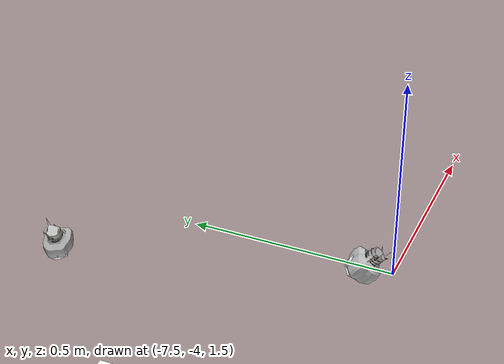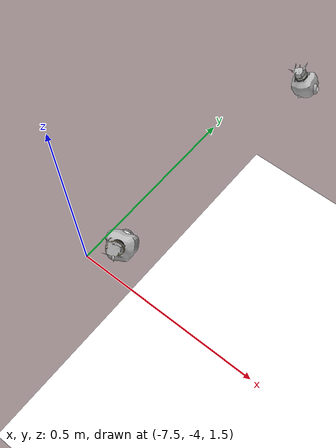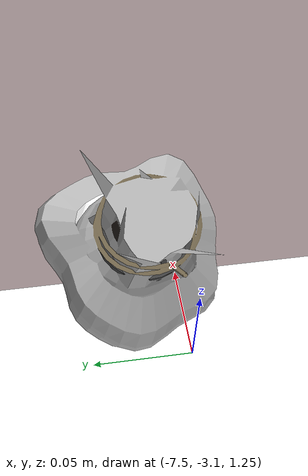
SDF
<sdf version="1.11">
 <world name="peach_orchard">
  <model name="ground">
   <static>true</static>
   <link name="link">
    <visual name="soil">
     <geometry><plane><normal>0 0 1</normal><size>32 22</size></plane></geometry>
     <material>
      <ambient>1 1 1 1</ambient>
      <diffuse>1 1 1 1</diffuse>
      <specular>0.1 0.1 0.1 1</specular>
      <pbr>
       <metal>
        <albedo_map>textures/soil_albedo.png</albedo_map>
        <normal_map type="tangent">textures/soil_normal.png</normal_map>
        <roughness>0.95</roughness>
        <metalness>0</metalness>
       </metal>
      </pbr>
     </material>
    </visual>
    <collision name="c_soil">
     <geometry><plane><normal>0 0 1</normal><size>32 22</size></plane></geometry>
    </collision>
   </link>
  </model>
  <model name="peach_tree_r0_t1_07">
   <pose>-7.47219 -3.8973 1.45 0 0.716784 -1.2536</pose>
   <static>true</static>
   <link name="bag">
    <visual name="bag_mesh">
     <pose>0 0 0.043085 0 0 -0</pose>
     <geometry>
      <mesh><uri>model://peach_sim/meshes/bagged_peach.glb</uri><scale>0.999098 1.21017 0.979205</scale></mesh>
     </geometry>
    </visual>
    <visual name="body">
     <pose>0 0 0.025085 0 0 0</pose>
     <geometry><ellipsoid><radii>0.0374662 0.0314645 0.0270918</radii></ellipsoid></geometry>
     <material>
      <ambient>1 1 1 1</ambient>
      <diffuse>1 1 1 1</diffuse>
      <specular>0.1 0.1 0.1 1</specular>
      <pbr>
       <metal>
        <albedo_map>textures/paper_bag_albedo.png</albedo_map>
        <normal_map type="tangent">textures/paper_bag_normal.png</normal_map>
        <roughness>0.72</roughness>
        <metalness>0</metalness>
       </metal>
      </pbr>
     </material>
    </visual>
    <visual name="bottom_fold">
     <pose>0 0 0.012 0 0 0.35</pose>
     <geometry><box><size>0.0580726 0.0361842 0.022</size></box></geometry>
     <material>
      <ambient>1 1 1 1</ambient>
      <diffuse>1 1 1 1</diffuse>
      <specular>0.1 0.1 0.1 1</specular>
      <pbr>
       <metal>
        <albedo_map>textures/paper_bag_albedo.png</albedo_map>
        <normal_map type="tangent">textures/paper_bag_normal.png</normal_map>
        <roughness>0.8</roughness>
        <metalness>0</metalness>
       </metal>
      </pbr>
     </material>
    </visual>
    <visual name="fruit">
     <pose>0 0 0.0189973 0 0 0</pose>
     <geometry><sphere><radius>0.0259972</radius></sphere></geometry>
     <material>
      <ambient>1 1 1 1</ambient>
      <diffuse>1 1 1 1</diffuse>
      <specular>0.1 0.1 0.1 1</specular>
      <pbr>
       <metal>
        <albedo_map>textures/fruit_skin_albedo.png</albedo_map>
        <normal_map type="tangent">textures/fruit_skin_normal.png</normal_map>
        <roughness>0.55</roughness>
        <metalness>0</metalness>
       </metal>
      </pbr>
     </material>
    </visual>
    <visual name="neck">
     <pose>0 0 0.0591701 0 0 0</pose>
     <geometry><cylinder><radius>0.013</radius><length>0.018</length></cylinder></geometry>
     <material>
      <ambient>1 1 1 1</ambient>
      <diffuse>1 1 1 1</diffuse>
      <specular>0.1 0.1 0.1 1</specular>
      <pbr>
       <metal>
        <albedo_map>textures/paper_bag_albedo.png</albedo_map>
        <normal_map type="tangent">textures/paper_bag_normal.png</normal_map>
        <roughness>0.75</roughness>
        <metalness>0</metalness>
       </metal>
      </pbr>
     </material>
    </visual>
    <visual name="gather">
     <pose>0 0 0.0401701 0 0 0</pose>
     <geometry><cylinder><radius>0.019</radius><length>0.02</length></cylinder></geometry>
     <material>
      <ambient>1 1 1 1</ambient>
      <diffuse>1 1 1 1</diffuse>
      <specular>0.1 0.1 0.1 1</specular>
      <pbr>
       <metal>
        <albedo_map>textures/paper_bag_albedo.png</albedo_map>
        <normal_map type="tangent">textures/paper_bag_normal.png</normal_map>
        <roughness>0.8</roughness>
        <metalness>0</metalness>
       </metal>
      </pbr>
     </material>
    </visual>
    <visual name="inner_paper">
     <pose>0 0 0.0641701 0 0 0</pose>
     <geometry><cylinder><radius>0.01</radius><length>0.008</length></cylinder></geometry>
     <material>
      <ambient>0.180392 0.14902 0.133333 1</ambient>
      <diffuse>0.180392 0.14902 0.133333 1</diffuse>
      <specular>0.1 0.1 0.1 1</specular>
     </material>
    </visual>
    <visual name="wire_0">
     <pose>0 0 0.0541701 0 0 0</pose>
     <geometry><cylinder><radius>0.0205</radius><length>0.0035</length></cylinder></geometry>
     <material>
      <ambient>0.25 0.25 0.25 1</ambient>
      <diffuse>0.25 0.25 0.25 1</diffuse>
      <specular>0.1 0.1 0.1 1</specular>
     </material>
    </visual>
    <visual name="wire_1">
     <pose>0 0 0.0611701 0 0 0</pose>
     <geometry><cylinder><radius>0.0205</radius><length>0.0035</length></cylinder></geometry>
     <material>
      <ambient>0.25 0.25 0.25 1</ambient>
      <diffuse>0.25 0.25 0.25 1</diffuse>
      <specular>0.1 0.1 0.1 1</specular>
     </material>
    </visual>
    <visual name="wire_tail">
     <pose>0.01 0 0.0621701 0 0.521618 0</pose>
     <geometry><cylinder><radius>0.0012</radius><length>0.026</length></cylinder></geometry>
     <material>
      <ambient>0.25 0.25 0.25 1</ambient>
      <diffuse>0.25 0.25 0.25 1</diffuse>
      <specular>0.1 0.1 0.1 1</specular>
     </material>
    </visual>
    <collision name="c_body">
     <pose>0 0 0.025085 0 0 0</pose>
     <geometry><cylinder><radius>0.0374662</radius><length>0.0501701</length></cylinder></geometry>
    </collision>
   </link>
  </model>
  <model name="peach_tree_r0_t2_04">
   <pose>-7.45792 -3.06904 1.27 0 0.41584 -2.885</pose>
   <static>true</static>
   <link name="bag">
    <visual name="bag_mesh">
     <pose>0 0 0.046871 0 0 -0</pose>
     <geometry>
      <mesh><uri>model://peach_sim/meshes/bagged_peach.glb</uri><scale>1.05278 1.15495 1.06525</scale></mesh>
     </geometry>
    </visual>
    <visual name="body">
     <pose>0 0 0.028871 0 0 0</pose>
     <geometry><ellipsoid><radii>0.0394791 0.0300287 0.0311807</radii></ellipsoid></geometry>
     <material>
      <ambient>1 1 1 1</ambient>
      <diffuse>1 1 1 1</diffuse>
      <specular>0.1 0.1 0.1 1</specular>
      <pbr>
       <metal>
        <albedo_map>textures/paper_bag_albedo.png</albedo_map>
        <normal_map type="tangent">textures/paper_bag_normal.png</normal_map>
        <roughness>0.72</roughness>
        <metalness>0</metalness>
       </metal>
      </pbr>
     </material>
    </visual>
    <visual name="bottom_fold">
     <pose>0 0 0.012 0 0 0.35</pose>
     <geometry><box><size>0.0611926 0.034533 0.022</size></box></geometry>
     <material>
      <ambient>1 1 1 1</ambient>
      <diffuse>1 1 1 1</diffuse>
      <specular>0.1 0.1 0.1 1</specular>
      <pbr>
       <metal>
        <albedo_map>textures/paper_bag_albedo.png</albedo_map>
        <normal_map type="tangent">textures/paper_bag_normal.png</normal_map>
        <roughness>0.8</roughness>
        <metalness>0</metalness>
       </metal>
      </pbr>
     </material>
    </visual>
    <visual name="fruit">
     <pose>0 0 0.0212473 0 0 0</pose>
     <geometry><sphere><radius>0.0283372</radius></sphere></geometry>
     <material>
      <ambient>1 1 1 1</ambient>
      <diffuse>1 1 1 1</diffuse>
      <specular>0.1 0.1 0.1 1</specular>
      <pbr>
       <metal>
        <albedo_map>textures/fruit_skin_albedo.png</albedo_map>
        <normal_map type="tangent">textures/fruit_skin_normal.png</normal_map>
        <roughness>0.55</roughness>
        <metalness>0</metalness>
       </metal>
      </pbr>
     </material>
    </visual>
    <visual name="neck">
     <pose>0 0 0.066742 0 0 0</pose>
     <geometry><cylinder><radius>0.013</radius><length>0.018</length></cylinder></geometry>
     <material>
      <ambient>1 1 1 1</ambient>
      <diffuse>1 1 1 1</diffuse>
      <specular>0.1 0.1 0.1 1</specular>
      <pbr>
       <metal>
        <albedo_map>textures/paper_bag_albedo.png</albedo_map>
        <normal_map type="tangent">textures/paper_bag_normal.png</normal_map>
        <roughness>0.75</roughness>
        <metalness>0</metalness>
       </metal>
      </pbr>
     </material>
    </visual>
    <visual name="gather">
     <pose>0 0 0.047742 0 0 0</pose>
     <geometry><cylinder><radius>0.019</radius><length>0.02</length></cylinder></geometry>
     <material>
      <ambient>1 1 1 1</ambient>
      <diffuse>1 1 1 1</diffuse>
      <specular>0.1 0.1 0.1 1</specular>
      <pbr>
       <metal>
        <albedo_map>textures/paper_bag_albedo.png</albedo_map>
        <normal_map type="tangent">textures/paper_bag_normal.png</normal_map>
        <roughness>0.8</roughness>
        <metalness>0</metalness>
       </metal>
      </pbr>
     </material>
    </visual>
    <visual name="inner_paper">
     <pose>0 0 0.071742 0 0 0</pose>
     <geometry><cylinder><radius>0.01</radius><length>0.008</length></cylinder></geometry>
     <material>
      <ambient>0.180392 0.14902 0.133333 1</ambient>
      <diffuse>0.180392 0.14902 0.133333 1</diffuse>
      <specular>0.1 0.1 0.1 1</specular>
     </material>
    </visual>
    <visual name="wire_0">
     <pose>0 0 0.061742 0 0 0</pose>
     <geometry><cylinder><radius>0.0205</radius><length>0.0035</length></cylinder></geometry>
     <material>
      <ambient>0.25 0.25 0.25 1</ambient>
      <diffuse>0.25 0.25 0.25 1</diffuse>
      <specular>0.1 0.1 0.1 1</specular>
     </material>
    </visual>
    <visual name="wire_1">
     <pose>0 0 0.068742 0 0 0</pose>
     <geometry><cylinder><radius>0.0205</radius><length>0.0035</length></cylinder></geometry>
     <material>
      <ambient>0.25 0.25 0.25 1</ambient>
      <diffuse>0.25 0.25 0.25 1</diffuse>
      <specular>0.1 0.1 0.1 1</specular>
     </material>
    </visual>
    <visual name="wire_tail">
     <pose>0.01 0 0.069742 0 0.521618 0</pose>
     <geometry><cylinder><radius>0.0012</radius><length>0.026</length></cylinder></geometry>
     <material>
      <ambient>0.25 0.25 0.25 1</ambient>
      <diffuse>0.25 0.25 0.25 1</diffuse>
      <specular>0.1 0.1 0.1 1</specular>
     </material>
    </visual>
    <collision name="c_body">
     <pose>0 0 0.028871 0 0 0</pose>
     <geometry><cylinder><radius>0.0394791</radius><length>0.057742</length></cylinder></geometry>
    </collision>
   </link>
  </model>
 </world>
</sdf>
